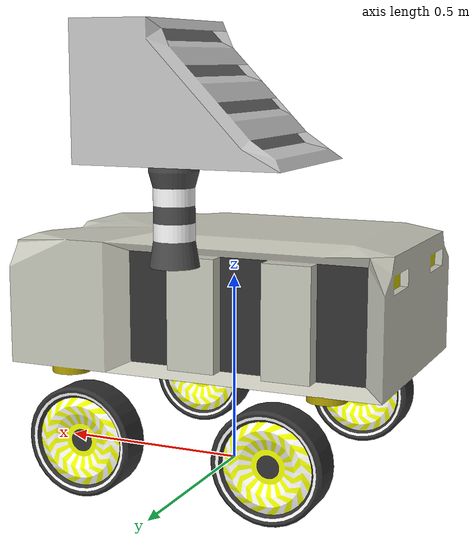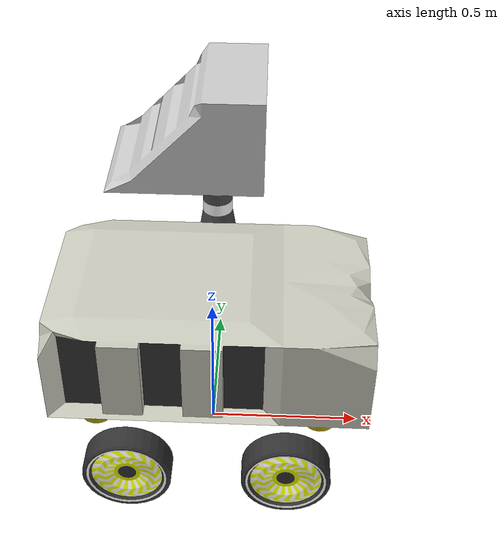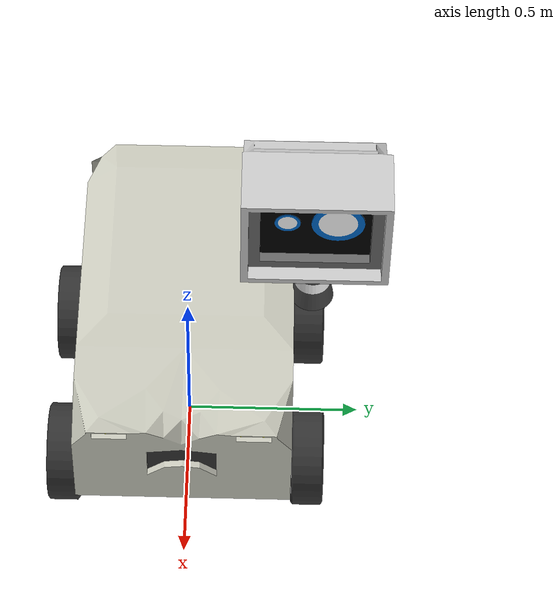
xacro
<?xml version="1.0"?>
<robot name="robot_patrol" xmlns:xacro="http://ros.org/wiki/xacro">

    <!-- Inertial -->
    <xacro:macro name="base_inertial">
        <inertial>
        <mass value="50" />
        <inertia ixx="2.01" ixy="0.0" ixz="0.0" iyy="4.68" iyz="0.0" izz="5.67" />
        </inertial>
    </xacro:macro>

    <xacro:macro name="wheel_inertial">
        <inertial>
        <mass value="2.5" />
        <inertia ixx="0.0139" ixy="0.0" ixz="0.0" iyy="0.0245" iyz="0.0" izz="0.0139" />
        </inertial>
    </xacro:macro>

    <xacro:macro name="neck_inertial">
        <inertial>
        <mass value="4.0" />
        <inertia ixx="0.0220" ixy="0.0" ixz="0.0" iyy="0.0220" iyz="0.0" izz="0.0072" />
        </inertial>
    </xacro:macro>

    <xacro:macro name="head_inertial">
        <inertial>
        <mass value="3.0" />
        <inertia ixx="0.0436" ixy="0.0" ixz="0.0" iyy="0.0661" iyz="0.0" izz="0.1025" />
        </inertial>
    </xacro:macro>

    <!-- Odom_link -->
    <link name="odom_link">

    </link>

    <!-- Base Link -->
    <link name="base_link">
        <visual>
            <geometry>
                <mesh filename="package://robot_patrol/meshes/patrol_body.dae"/>
            </geometry>
            <origin xyz="0 0 0"/>
        </visual>
        <collision>
            <geometry>
                <box size="0.6 1.0 0.25"/>
            </geometry>
            <origin xyz="0 0 0"/>
        </collision>
        <xacro:base_inertial/>
    </link>

    <joint name="base_link_to_odom_link" type="fixed">
        <parent link="odom_link"/>
        <child link="base_link"/>
        <origin xyz="0 0 0.45"/>
    </joint>

    <!-- Wheel Joint -->
    <xacro:macro name="wheel" params="side reflect">

        <link name="${side}_front_wheel">
            <visual>
                <geometry>
                    <mesh filename="package://robot_patrol/meshes/patrol_tyre.dae"/>
                </geometry>
                <origin xyz="0 0 0"/>
            </visual>
            <collision>
                <geometry>
                    <cylinder radius="0.14" length="0.08"/>
                </geometry>
                <origin xyz="0 0 0" rpy="0 1.577 0"/>
            </collision>
            <xacro:wheel_inertial/>
        </link>

        <joint name="${side}_front_wheel_to_base_link" type="continuous">
            <axis xyz="0 1 0"/>
            <parent link="base_link"/>
            <child link="${side}_front_wheel"/>
            <origin xyz="${reflect*0.25} 0.35 -0.325" rpy="0 0 0"/>
        </joint>

        <link name="${side}_rear_wheel">
            <visual>
                <geometry>
                    <mesh filename="package://robot_patrol/meshes/patrol_tyre.dae"/>
                </geometry>
                <origin xyz="0 0 0"/>
            </visual>
            <collision>
                <geometry>
                    <cylinder radius="0.14" length="0.08"/>
                </geometry>
                <origin xyz="0 0 0" rpy="0 1.577 0"/>
            </collision>
            <xacro:wheel_inertial/>
        </link>

        <joint name="${side}_rear_wheel_to_base_link" type="continuous">
            <axis xyz="0 1 0"/>
            <parent link="base_link"/>
            <child link="${side}_rear_wheel"/>
            <origin xyz="${reflect*0.25} -0.35 -0.325" rpy="0 0 0"/>
        </joint>

    </xacro:macro>
    <xacro:wheel side="right" reflect="1"/>
    <xacro:wheel side="left" reflect="-1"/>

    <!-- Neck -->
    <link name="neck_link">
        <visual>
            <geometry>
                <mesh filename="package://robot_patrol/meshes/patrol_neck.dae"/>
            </geometry>
            <origin xyz="0 0 0"/>
        </visual>
        <collision>
            <geometry>
                <cylinder radius="0.06" length="0.25"/>
            </geometry>
            <origin xyz="0 0 0.125"/>
        </collision>
        <xacro:neck_inertial/>
    </link>

    <joint name="neck_link_to_base_link" type="prismatic">
        <axis xyz="0 0 1"/>
        <limit effort="1000" lower="-0.168" upper="0" velocity="30"/>
        <parent link="base_link"/>
        <child link="neck_link"/>
        <origin xyz="0 0.35 0.13"/>
    </joint>

    <!-- Head -->
    <link name="head_link">
        <visual>
            <geometry>
                <mesh filename="package://robot_patrol/meshes/patrol_head.dae"/>
            </geometry>
            <origin xyz="0 0 0"/>
        </visual>
        <collision>
            <geometry>
                <box size="0.4 0.35 0.2"/>
            </geometry>
            <origin xyz="0 -0.03 0.1"/>
        </collision>
        <xacro:head_inertial/>
    </link>

    <joint name="head_link_to_neck_link" type="revolute">
        <axis xyz="0 0 1"/>
        <limit effort="1000" lower="-2.356" upper="2.356" velocity="30"/>
        <parent link="neck_link"/>
        <child link="head_link"/>
        <origin xyz="0 0 0.25"/>
    </joint>

    <!-- ROS2 Control -->
    <ros2_control name="GazeboSystem" type="system">
        <hardware>
            <plugin>gazebo_ros2_control/GazeboSystem</plugin>
        </hardware>

        <joint name="head_link_to_neck_link">
            <command_interface name="position" />
            <command_interface name="velocity" />
            <state_interface name="position"/>
            <state_interface name="velocity"/>
        </joint>

        <joint name="neck_link_to_base_link">
            <command_interface name="position" />
            <command_interface name="velocity" />
            <state_interface name="position"/>
            <state_interface name="velocity"/>
        </joint>

        <joint name="left_front_wheel_to_base_link">
            <command_interface name="velocity" />
            <state_interface name="position"/>
            <state_interface name="velocity"/>
        </joint>

        <joint name="left_rear_wheel_to_base_link">
            <command_interface name="velocity" />
            <state_interface name="position"/>
            <state_interface name="velocity"/>
        </joint>

        <joint name="right_front_wheel_to_base_link">
            <command_interface name="velocity" />
            <state_interface name="position"/>
            <state_interface name="velocity"/>
        </joint>

        <joint name="right_rear_wheel_to_base_link">
            <command_interface name="velocity" />
            <state_interface name="position"/>
            <state_interface name="velocity"/>
        </joint>

    </ros2_control>

    <!-- Gazebo -->
    <gazebo>
        <plugin filename="libgazebo_ros2_control.so" name="gazebo_ros2_control">
            <parameters>$(find robot_patrol)/config/patrol_diffdrive_test.yaml</parameters>
        </plugin>
    </gazebo>

</robot>
